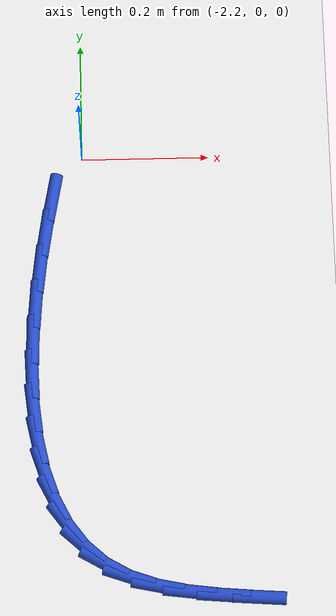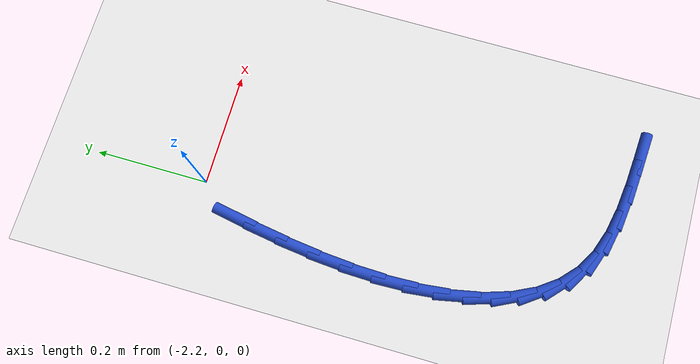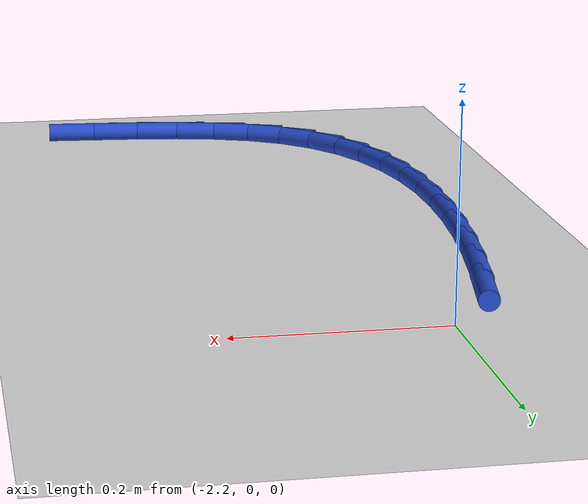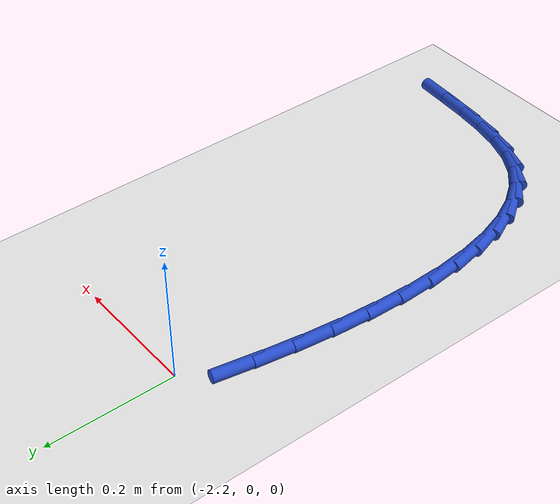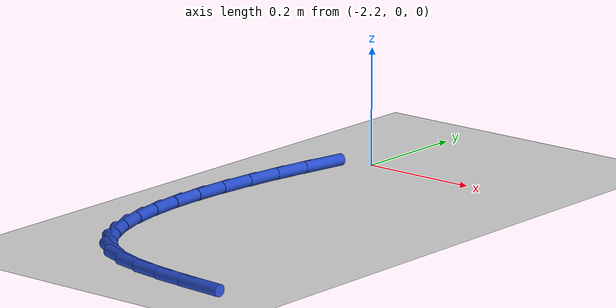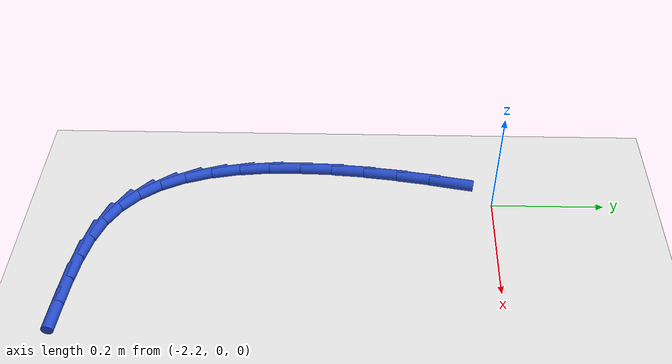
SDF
<sdf version="1.6">
 <world name="default">
  <model name="ground_plane">
   <static>1</static>
   <link name="link">
    <collision name="collision">
     <geometry><plane><normal>0 0 1</normal><size>100 100</size></plane></geometry>
     <surface><friction><ode><mu>100</mu><mu2>50</mu2></ode></friction></surface>
    </collision>
    <visual name="visual">
     <cast_shadows>0</cast_shadows>
     <geometry><plane><normal>0 0 1</normal><size>100 100</size></plane></geometry>
     <material>
      <script><uri>file://media/materials/scripts/gazebo.material</uri><name>Gazebo/WhiteGlow</name></script>
     </material>
    </visual>
   </link>
  </model>
  <model name="line">
   <link name="link_68">
    <pose>-2.246683709258955 -0.07033581365259546 0.01 0 1.57 1.3878424840213663</pose>
    <collision name="collision">
     <geometry><cylinder><radius>0.01</radius><length>0.08</length></cylinder></geometry>
    </collision>
    <visual name="visual">
     <material>
      <script><name>Gazebo/Blue</name><uri>file://media/materials/scripts/gazebo.material</uri></script>
     </material>
     <geometry><cylinder><radius>0.01</radius><length>0.08</length></cylinder></geometry>
    </visual>
   </link>
   <link name="link_69">
    <pose>-2.257721072433514 -0.1299898738744201 0.01 0 1.57 1.4184331368081344</pose>
    <collision name="collision">
     <geometry><cylinder><radius>0.01</radius><length>0.08</length></cylinder></geometry>
    </collision>
    <visual name="visual">
     <material>
      <script><name>Gazebo/Blue</name><uri>file://media/materials/scripts/gazebo.material</uri></script>
     </material>
     <geometry><cylinder><radius>0.01</radius><length>0.08</length></cylinder></geometry>
    </visual>
   </link>
   <link name="link_70">
    <pose>-2.2669236773338524 -0.18992090465193703 0.01 0 1.57 1.454157151650541</pose>
    <collision name="collision">
     <geometry><cylinder><radius>0.01</radius><length>0.08</length></cylinder></geometry>
    </collision>
    <visual name="visual">
     <material>
      <script><name>Gazebo/Blue</name><uri>file://media/materials/scripts/gazebo.material</uri></script>
     </material>
     <geometry><cylinder><radius>0.01</radius><length>0.08</length></cylinder></geometry>
    </visual>
   </link>
   <link name="link_71">
    <pose>-2.27390411444385 -0.24949568109811743 0.01 0 1.57 1.4963275208523752</pose>
    <collision name="collision">
     <geometry><cylinder><radius>0.01</radius><length>0.08</length></cylinder></geometry>
    </collision>
    <visual name="visual">
     <material>
      <script><name>Gazebo/Blue</name><uri>file://media/materials/scripts/gazebo.material</uri></script>
     </material>
     <geometry><cylinder><radius>0.01</radius><length>0.08</length></cylinder></geometry>
    </visual>
   </link>
   <link name="link_72">
    <pose>-2.2782749742473847 -0.3080809783259331 0.01 0 1.57 1.546682138945033</pose>
    <collision name="collision">
     <geometry><cylinder><radius>0.01</radius><length>0.08</length></cylinder></geometry>
    </collision>
    <visual name="visual">
     <material>
      <script><name>Gazebo/Blue</name><uri>file://media/materials/scripts/gazebo.material</uri></script>
     </material>
     <geometry><cylinder><radius>0.01</radius><length>0.08</length></cylinder></geometry>
    </visual>
   </link>
   <link name="link_73">
    <pose>-2.2796488472283354 -0.36504357144835664 0.01 0 1.57 -1.5340618820628</pose>
    <collision name="collision">
     <geometry><cylinder><radius>0.01</radius><length>0.08</length></cylinder></geometry>
    </collision>
    <visual name="visual">
     <material>
      <script><name>Gazebo/Blue</name><uri>file://media/materials/scripts/gazebo.material</uri></script>
     </material>
     <geometry><cylinder><radius>0.01</radius><length>0.08</length></cylinder></geometry>
    </visual>
   </link>
   <link name="link_74">
    <pose>-2.27763832387058 -0.4197502355783582 0.01 0 1.57 -1.4596658292979567</pose>
    <collision name="collision">
     <geometry><cylinder><radius>0.01</radius><length>0.08</length></cylinder></geometry>
    </collision>
    <visual name="visual">
     <material>
      <script><name>Gazebo/Blue</name><uri>file://media/materials/scripts/gazebo.material</uri></script>
     </material>
     <geometry><cylinder><radius>0.01</radius><length>0.08</length></cylinder></geometry>
    </visual>
   </link>
   <link name="link_75">
    <pose>-2.271855994657999 -0.47156774582891026 0.01 0 1.57 -1.3677823106162332</pose>
    <collision name="collision">
     <geometry><cylinder><radius>0.01</radius><length>0.08</length></cylinder></geometry>
    </collision>
    <visual name="visual">
     <material>
      <script><name>Gazebo/Blue</name><uri>file://media/materials/scripts/gazebo.material</uri></script>
     </material>
     <geometry><cylinder><radius>0.01</radius><length>0.08</length></cylinder></geometry>
    </visual>
   </link>
   <link name="link_76">
    <pose>-2.261914450074469 -0.5198628773129844 0.01 0 1.57 -1.2536406235856041</pose>
    <collision name="collision">
     <geometry><cylinder><radius>0.01</radius><length>0.08</length></cylinder></geometry>
    </collision>
    <visual name="visual">
     <material>
      <script><name>Gazebo/Blue</name><uri>file://media/materials/scripts/gazebo.material</uri></script>
     </material>
     <geometry><cylinder><radius>0.01</radius><length>0.08</length></cylinder></geometry>
    </visual>
   </link>
   <link name="link_77">
    <pose>-2.2474262806038694 -0.5640024051435524 0.01 0 1.57 -1.1123084045248075</pose>
    <collision name="collision">
     <geometry><cylinder><radius>0.01</radius><length>0.08</length></cylinder></geometry>
    </collision>
    <visual name="visual">
     <material>
      <script><name>Gazebo/Blue</name><uri>file://media/materials/scripts/gazebo.material</uri></script>
     </material>
     <geometry><cylinder><radius>0.01</radius><length>0.08</length></cylinder></geometry>
    </visual>
   </link>
   <link name="link_78">
    <pose>-2.2280040767300786 -0.6033531044335864 0.01 0 1.57 -0.9406852551084782</pose>
    <collision name="collision">
     <geometry><cylinder><radius>0.01</radius><length>0.08</length></cylinder></geometry>
    </collision>
    <visual name="visual">
     <material>
      <script><name>Gazebo/Blue</name><uri>file://media/materials/scripts/gazebo.material</uri></script>
     </material>
     <geometry><cylinder><radius>0.01</radius><length>0.08</length></cylinder></geometry>
    </visual>
   </link>
   <link name="link_79">
    <pose>-2.2032604289369764 -0.6372817502960573 0.01 0 1.57 -0.741207572414806</pose>
    <collision name="collision">
     <geometry><cylinder><radius>0.01</radius><length>0.08</length></cylinder></geometry>
    </collision>
    <visual name="visual">
     <material>
      <script><name>Gazebo/Blue</name><uri>file://media/materials/scripts/gazebo.material</uri></script>
     </material>
     <geometry><cylinder><radius>0.01</radius><length>0.08</length></cylinder></geometry>
    </visual>
   </link>
   <link name="link_80">
    <pose>-2.172807927708439 -0.6651551178439365 0.01 0 1.57 -0.5260594746920976</pose>
    <collision name="collision">
     <geometry><cylinder><radius>0.01</radius><length>0.08</length></cylinder></geometry>
    </collision>
    <visual name="visual">
     <material>
      <script><name>Gazebo/Blue</name><uri>file://media/materials/scripts/gazebo.material</uri></script>
     </material>
     <geometry><cylinder><radius>0.01</radius><length>0.08</length></cylinder></geometry>
    </visual>
   </link>
   <link name="link_81">
    <pose>-2.1362782043076045 -0.6863655857820175 0.01 0 1.57 -0.3373671586808228</pose>
    <collision name="collision">
     <geometry><cylinder><radius>0.01</radius><length>0.08</length></cylinder></geometry>
    </collision>
    <visual name="visual">
     <material>
      <script><name>Gazebo/Blue</name><uri>file://media/materials/scripts/gazebo.material</uri></script>
     </material>
     <geometry><cylinder><radius>0.01</radius><length>0.08</length></cylinder></geometry>
    </visual>
   </link>
   <link name="link_82">
    <pose>-2.0939722227432904 -0.7012055654335568 0.01 0 1.57 -0.2073817738236382</pose>
    <collision name="collision">
     <geometry><cylinder><radius>0.01</radius><length>0.08</length></cylinder></geometry>
    </collision>
    <visual name="visual">
     <material>
      <script><name>Gazebo/Blue</name><uri>file://media/materials/scripts/gazebo.material</uri></script>
     </material>
     <geometry><cylinder><radius>0.01</radius><length>0.08</length></cylinder></geometry>
    </visual>
   </link>
   <link name="link_83">
    <pose>-2.047021517667985 -0.711084312734696 0.01 0 1.57 -0.126207193546715</pose>
    <collision name="collision">
     <geometry><cylinder><radius>0.01</radius><length>0.08</length></cylinder></geometry>
    </collision>
    <visual name="visual">
     <material>
      <script><name>Gazebo/Blue</name><uri>file://media/materials/scripts/gazebo.material</uri></script>
     </material>
     <geometry><cylinder><radius>0.01</radius><length>0.08</length></cylinder></geometry>
    </visual>
   </link>
   <link name="link_84">
    <pose>-1.9966093837296304 -0.7174806838085401 0.01 0 1.57 -0.08317883889698062</pose>
    <collision name="collision">
     <geometry><cylinder><radius>0.01</radius><length>0.08</length></cylinder></geometry>
    </collision>
    <visual name="visual">
     <material>
      <script><name>Gazebo/Blue</name><uri>file://media/materials/scripts/gazebo.material</uri></script>
     </material>
     <geometry><cylinder><radius>0.01</radius><length>0.08</length></cylinder></geometry>
    </visual>
   </link>
   <link name="link_85">
    <pose>-1.9439191155761673 -0.7218735347781927 0.01 0 1.57 -0.07179567956582938</pose>
    <collision name="collision">
     <geometry><cylinder><radius>0.01</radius><length>0.08</length></cylinder></geometry>
    </collision>
    <visual name="visual">
     <material>
      <script><name>Gazebo/Blue</name><uri>file://media/materials/scripts/gazebo.material</uri></script>
     </material>
     <geometry><cylinder><radius>0.01</radius><length>0.08</length></cylinder></geometry>
    </visual>
   </link>
  </model>
 </world>
</sdf>
